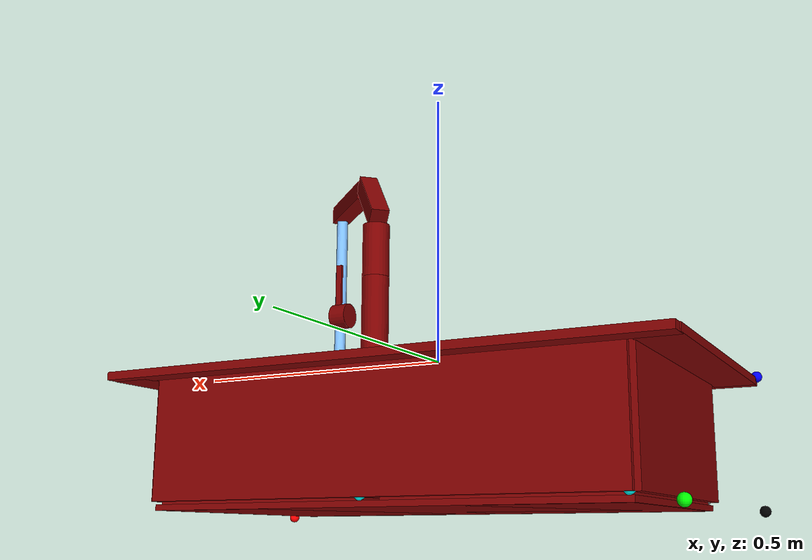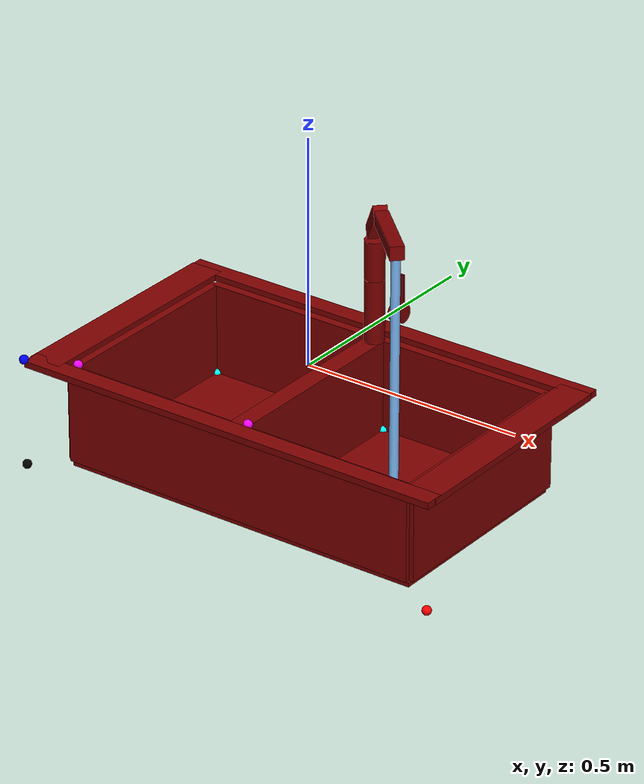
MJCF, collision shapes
<mujoco model="model">
  <compiler angle="radian"/>
  <asset>
    <material name="metal_Mat" specular="0.5" shininess="0.36" rgba="0.800000 0.800000 0.800000 1.000000"/>
    <material name="sink_Mat" specular="0.5" shininess="0.36" rgba="0.800000 0.800000 0.800000 1.000000"/>
    <material name="tap_Mat" specular="0.5" shininess="0.36" rgba="0.800000 0.800000 0.800000 1.000000"/>
    <mesh file="visuals/model_0.obj" name="model_0_vis" scale="1 1 1"/>
    <mesh file="visuals/model_1.obj" name="model_1_vis" scale="1 1 1"/>
    <mesh file="visuals/model_2.obj" name="model_2_vis" scale="1 1 1"/>
    <mesh file="visuals/spout_0.obj" name="spout_0_vis" scale="1 1 1"/>
    <mesh file="visuals/handle_0.obj" name="handle_0_vis" scale="1 1 1"/>
  </asset>
  <default>
    <default class="visual">
      <geom conaffinity="0" contype="0" group="1" type="mesh"/>
    </default>
    <default class="collision">
      <geom group="0" rgba="0.5 0 0 0.5" solimp="0.998 0.998 0.001" solref="0.001 2"/>
    </default>
  </default>
  <worldbody>
    <body>
      <!-- exterior bounding box points -->
      <site rgba="0 0 0 1" size="0.01" pos="-0.5 -0.292 -0.26" name="ext_p0"/>
      <site rgba="1 0 0 1" size="0.01" pos="0.5 -0.292 -0.26" name="ext_px"/>
      <site rgba="0 1 0 1" size="0.01" pos="-0.5 0.292 -0.26" name="ext_py"/>
      <site rgba="0 0 1 1" size="0.01" pos="-0.5 -0.292 -0.02" name="ext_pz"/>
      <!-- interior bounding box points (LEFT) -->
      <site rgba="0.5 0.5 0.5 1" size="0.01" pos="-0.41 -0.23 -0.24" name="int_left_p0"/>
      <site rgba="1 1 0 1" size="0.01" pos="-0.021 -0.23 -0.24" name="int_left_px"/>
      <site rgba="0 1 1 1" size="0.01" pos="-0.41 0.23 -0.24" name="int_left_py"/>
      <site rgba="1 0 1 1" size="0.01" pos="-0.41 -0.23 -0.03" name="int_left_pz"/>
      <!-- interior bounding box points (RIGHT) -->
      <site rgba="0.5 0.5 0.5 1" size="0.01" pos="0.021 -0.23 -0.24" name="int_right_p0"/>
      <site rgba="1 1 0 1" size="0.01" pos="0.41 -0.23 -0.24" name="int_right_px"/>
      <site rgba="0 1 1 1" size="0.01" pos="0.021 0.23 -0.24" name="int_right_py"/>
      <site rgba="1 0 1 1" size="0.01" pos="0.021 -0.23 -0.03" name="int_right_pz"/>
      <body name="object">
        <geom solimp="0.998 0.998 0.001" solref="0.001 1" density="100" friction="0.95 0.3 0.1" type="mesh" mesh="model_0_vis" material="sink_Mat" class="visual"/>
        <geom solimp="0.998 0.998 0.001" solref="0.001 1" density="100" friction="0.95 0.3 0.1" type="mesh" mesh="model_1_vis" material="tap_Mat" class="visual"/>
        <geom solimp="0.998 0.998 0.001" solref="0.001 1" density="100" friction="0.95 0.3 0.1" type="mesh" mesh="model_2_vis" material="metal_Mat" class="visual"/>
        <!-- Bottom -->
        <geom class="collision" type="box" pos="0 0 -0.255" size="0.42 0.24 0.005"/>
        <geom class="collision" type="box" pos="0.215 0 -0.25" size="0.20 0.23 0.01" name="bottom"/>
        <geom class="collision" type="box" pos="-0.215 0 -0.25" size="0.20 0.23 0.01" name="bottom_left"/>
        <!-- Center Wall -->
        <geom class="collision" type="box" pos="0 0 -0.14" size="0.021 0.24 0.105"/>
        <!-- Back Wall -->
        <geom class="collision" type="box" pos="0 0.24 -0.14" size="0.42 0.01 0.105"/>
        <!-- Front Wall -->
        <geom class="collision" type="box" pos="0 -0.24 -0.14" size="0.42 0.01 0.105"/>
        <!-- Right Wall -->
        <geom class="collision" type="box" pos="0.42 0 -0.14" size="0.01 0.24 0.105"/>
        <!-- Left Wall -->
        <geom class="collision" type="box" pos="-0.42 0 -0.14" size="0.01 0.24 0.105"/>
        <!-- Back Ledge -->
        <geom class="collision" type="box" pos="0 0.271 -0.03" size="0.5 0.021 0.007"/>
        <!-- Front Ledge -->
        <geom class="collision" type="box" pos="0 -0.271 -0.03" size="0.5 0.021 0.007"/>
        <!-- Right Ledge -->
        <geom class="collision" type="box" pos="0.465 0 -0.03" size="0.037 0.27 0.007"/>
        <!-- Left Ledge -->
        <geom class="collision" type="box" pos="-0.465 0 -0.03" size="0.037 0.27 0.007"/>
        <!-- Faucet Base -->
        <geom class="collision" type="cylinder" pos="0.001 0.2245 0.035" size="0.022 0.071 0"/>
        <!-- Handle Attach Point-->
        <body name="spout">
          <joint axis="0 0 1" limited="true" name="spout_joint" range="-2.36 0.79" pos="0.001 0.2245 0" armature="2" damping="10"/>
          <geom solimp="0.998 0.998 0.001" solref="0.001 1" density="100" friction="0.95 0.3 0.1" type="mesh" mesh="spout_0_vis" material="tap_Mat" class="visual"/>
          <geom class="collision" type="cylinder" pos="0.001 0.2245 0.15" size="0.022 0.044 0"/>
          <geom class="collision" type="box" pos="0.02 0.205 0.245" size="0.015 0.06 0.015" quat="0.854 -0.354 -0.146 0.354"/>
          <geom class="collision" type="box" pos="0.123 0.102 0.285" size="0.015 0.098 0.015" quat="0.923 -0.0322 -0.0134 0.382" name="spout_top"/>
          <site type="cylinder" rgba="0.5 0.75 1 1" pos="0.18 0.045 0.025" size="0.01 0.275" name="water"/>
        </body>
        <body name="handle">
          <joint axis="1 0 0" limited="true" name="handle_temp_joint" range="-0.79 0.79" pos="0.0485 0.2245 0.047" armature="2" damping="50"/>
          <joint axis="0 1 0" type="hinge" limited="true" name="handle_joint" range="0 0.52" pos="0.0485 0.2245 0.045" damping="10"/>
          <geom solimp="0.998 0.998 0.001" solref="0.001 1" density="100" friction="0.95 0.3 0.1" type="mesh" mesh="handle_0_vis" material="tap_Mat" class="visual"/>
          <geom class="collision" type="cylinder" pos="0.0625 0.2245 0.047" size="0.02 0.014 0" axisangle="0 1 0 1.57"/>
          <geom class="collision" type="box" pos="0.07 0.2243 0.10" size="0.005 0.0024 0.034" name="handle_main"/>
        </body>
      </body>
    </body>
  </worldbody>
</mujoco>
